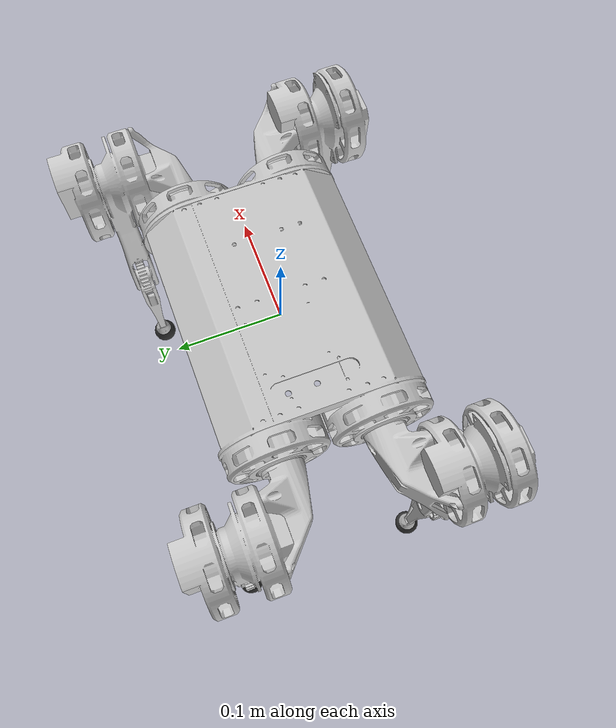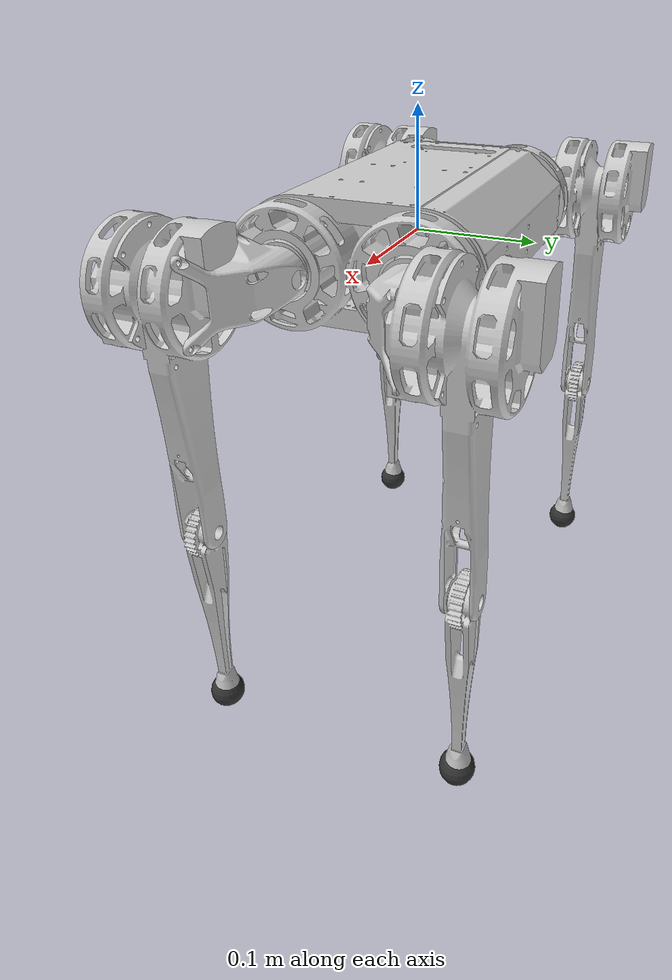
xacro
<?xml version="1.0" ?>
<robot name="mini_cheetah" xmlns:xacro="http://ros.org/wiki/xacro">
    <material name="darkgray">
        <color rgba=".2 .2 .2 1"/>
    </material>
    <link name="body">
        <inertial>
            <mass value="3.3"/>
            <origin xyz="0.0 0.0 0.0"/>
            <inertia ixx="0.011253" ixy="0" ixz="0" iyy="0.036203" iyz="0" izz="0.042673"/>
        </inertial>
        <visual>
            <geometry>
                <mesh filename="package://quadruped_ctrl/urdf/mini_cheetah/meshes/mini_body.dae"/>
            </geometry>
            <origin rpy="0.0 0.0 0.0" xyz="0.0 0.0 0.0"/>
        </visual>
        <collision>
            <geometry>
                <mesh filename="package://quadruped_ctrl/urdf/mini_cheetah/meshes/mini_body.dae"/>
            </geometry>
            <origin rpy="0 0 0" xyz="0 0 0"/>
        </collision>
    </link>

    <!--!!!!!!!!!!!! Front Right Leg !!!!!!!!!!!!!!!!!!!!!!!!!!!!!!!!!!!!-->
    <joint name="torso_to_abduct_fr_j" type="continuous">
        <axis xyz="1 0 0"/>
        <origin rpy="0 0 0" xyz="0.19 -0.049 0.0"/>
        <parent link="body"/>
        <child link="abduct_fr"/>
    </joint>
    <link name="abduct_fr">
        <inertial>
            <mass value="0.54"/>
            <origin xyz="0.0 0.036 0."/>
            <inertia ixx="0.000381" ixy="0.000058" ixz="0.00000045"
                iyy="0.000560" iyz="0.00000095" izz="0.000444"/>
        </inertial>
        <visual>
            <geometry>
                <mesh filename="package://quadruped_ctrl/urdf/mini_cheetah/meshes/mini_abad.dae"/>
            </geometry>
            <origin rpy="3.141592 0.0 1.5708" xyz="-0.055 0.0 0.0"/>
        </visual>
        <collision>
            <geometry>
                <mesh filename="package://quadruped_ctrl/urdf/mini_cheetah/meshes/mini_abad.dae"/>
            </geometry>
            <origin rpy="3.141592 0 1.5708" xyz="-0.055 0 0"/>
        </collision>
    </link>

    <joint name="abduct_fr_to_thigh_fr_j" type="continuous">
        <axis xyz="0 -1 0"/>
        <origin rpy="0.0 0.0 0.0" xyz="0.0 -0.062 0.00"/>
        <parent link="abduct_fr"/>
        <child link="thigh_fr"/>
    </joint>
    <link name="thigh_fr">
        <inertial>
            <mass value="0.634"/>
            <origin xyz="0.0 0.016 -0.02"/>
            <inertia ixx="0.001983" ixy="0.000245" ixz="0.000013"
                iyy="0.002103" iyz="0.0000015" izz="0.000408"/>
        </inertial>
        <visual>
            <geometry>
                <mesh filename="package://quadruped_ctrl/urdf/mini_cheetah/meshes/mini_upper_link.dae"/>
            </geometry>
            <origin rpy="0.0 -1.5708 0.0" xyz="0.0 0.0 0.0"/>
        </visual>
        <collision>
            <geometry>
                <mesh filename="package://quadruped_ctrl/urdf/mini_cheetah/meshes/mini_upper_link.dae"/>
            </geometry>
            <origin rpy="0 -1.5708 0" xyz="0 0 0"/>
        </collision>
    </link>

    <joint name="thigh_fr_to_knee_fr_j" type="continuous">
        <axis xyz="0 -1 0"/>
        <origin rpy="0.0 0 0.0" xyz="0.0 0.0 -0.209"/>
        <parent link="thigh_fr"/>
        <child link="shank_fr"/>
    </joint>
    <link name="shank_fr">
        <inertial>
            <mass value="0.064"/>
            <origin xyz="0.0 0.0 -0.209"/>
            <inertia ixx="0.000245" ixy="0" ixz="0.0" iyy="0.000248" iyz="0" izz="0.000006"/>
        </inertial>
        <visual>
            <geometry>
                <mesh filename="package://quadruped_ctrl/urdf/mini_cheetah/meshes/mini_lower_link.dae"/>
            </geometry>
            <origin rpy="0.0 3.141592 0.0" xyz="0.0 0.0 0.0"/>
        </visual>
        <collision>
            <geometry>
                <mesh filename="package://quadruped_ctrl/urdf/mini_cheetah/meshes/mini_lower_link.dae"/>
            </geometry>
            <origin rpy="0 3.141592 0" xyz="0 0 0"/>
        </collision>
    </link>
    <link name="toe_fr">
    <contact>
      <friction_anchor/>
      <stiffness value="30000.0"/>
      <damping value="1000.0"/>
      <spinning_friction value="0.3"/>
      <lateral_friction value="3.0"/>
    </contact>
    <visual>
      <origin rpy="0 0 0" xyz="0 0 0"/>
      <geometry>
        <sphere radius="0.015"/>
      </geometry>
      <material name="darkgray"/>
    </visual>
    <collision>
      <origin rpy="0 0 0" xyz="0 0 0"/>
      <geometry>
        <sphere radius="0.015"/>
      </geometry>
    </collision>
    <inertial>
      <mass value="0.15"/>
      <inertia ixx="0.000025" ixy="0" ixz="0" iyy="0.000025" iyz="0" izz="0.000025"/>
    </inertial>
  </link>
  <joint name="toe_fr_joint" type="fixed">
    <parent link="shank_fr"/>
    <child link="toe_fr"/>
    <origin xyz="0 0 -0.18"/>
    <dynamics damping="0.0" friction="0.0"/>
  </joint>

<!--!!!!!!!!!!!! Front Left Leg !!!!!!!!!!!!!!!!!!!!!!!!!!!!!!!!!!!!-->
    <joint name="torso_to_abduct_fl_j" type="continuous">
        <axis xyz="1 0 0"/>
        <origin rpy="0 0 0" xyz="0.19 0.049 0.0"/>
        <parent link="body"/>
        <child link="abduct_fl"/>
    </joint>
    <link name="abduct_fl">
        <inertial>
            <mass value="0.54"/>
            <origin xyz="0.0 0.036 0."/>
            <inertia ixx="0.000381" ixy="0.000058" ixz="0.00000045"
                iyy="0.000560" iyz="0.00000095" izz="0.000444"/>
        </inertial>
        <visual>
            <geometry>
                <mesh filename="package://quadruped_ctrl/urdf/mini_cheetah/meshes/mini_abad.dae"/>
            </geometry>
            <origin rpy="0. 0. -1.5708" xyz="-0.055 0.0 0.0"/>
        </visual>
        <collision>
            <geometry>
                <mesh filename="package://quadruped_ctrl/urdf/mini_cheetah/meshes/mini_abad.dae"/>
            </geometry>
            <origin rpy="0 0 -1.5708" xyz="-0.055 0 0"/>
        </collision>
    </link>

    <joint name="abduct_fl_to_thigh_fl_j" type="continuous">
        <axis xyz="0 -1 0"/>
        <origin rpy="0.0 0.0 0.0" xyz="0.0 0.062 0.00"/>
        <parent link="abduct_fl"/>
        <child link="thigh_fl"/>
    </joint>
    <link name="thigh_fl">
        <inertial>
            <mass value="0.634"/>
            <origin xyz="0.0 0.016 -0.02"/>
            <inertia ixx="0.001983" ixy="0.000245" ixz="0.000013"
                iyy="0.002103" iyz="0.0000015" izz="0.000408"/>
        </inertial>
        <visual>
            <geometry>
                <mesh filename="package://quadruped_ctrl/urdf/mini_cheetah/meshes/mini_upper_link.dae"/>
            </geometry>
            <origin rpy="0.0 -1.5708 0.0" xyz="0.0 0.0 0.0"/>
        </visual>
        <collision>
            <geometry>
                <mesh filename="package://quadruped_ctrl/urdf/mini_cheetah/meshes/mini_upper_link.dae"/>
            </geometry>
            <origin rpy="0 -1.5708 0" xyz="0 0 0"/>
        </collision>
    </link>

    <joint name="thigh_fl_to_knee_fl_j" type="continuous">
        <axis xyz="0 -1 0"/>
        <origin rpy="0.0 0 0.0" xyz="0.0 0.0 -0.209"/>
        <parent link="thigh_fl"/>
        <child link="shank_fl"/>
    </joint>
    <link name="shank_fl">
        <inertial>
            <mass value="0.064"/>
            <origin xyz="0.0 0.0 -0.209"/>
            <inertia ixx="0.000245" ixy="0" ixz="0.0" iyy="0.000248" iyz="0" izz="0.000006"/>
        </inertial>
        <visual>
            <geometry>
                <mesh filename="package://quadruped_ctrl/urdf/mini_cheetah/meshes/mini_lower_link.dae"/>
            </geometry>
            <origin rpy="0.0 3.141592 0.0" xyz="0.0 0.0 0.0"/>
        </visual>
        <collision>
            <geometry>
                <mesh filename="package://quadruped_ctrl/urdf/mini_cheetah/meshes/mini_lower_link.dae"/>
            </geometry>
            <origin rpy="0 3.141592 0" xyz="0 0 0"/>
        </collision>
    </link>
    <link name="toe_fl">
      <contact>
      <friction_anchor/>
      <stiffness value="30000.0"/>
      <damping value="1000.0"/>
      <spinning_friction value="0.3"/>
      <lateral_friction value="3.0"/>
    </contact>
    <visual>
      <origin rpy="0 0 0" xyz="0 0 0"/>
      <geometry>
        <sphere radius="0.015"/>
      </geometry>
      <material name="darkgray"/>
    </visual>
    <collision>
      <origin rpy="0 0 0" xyz="0 0 0"/>
      <geometry>
        <sphere radius="0.015"/>
      </geometry>
    </collision>
    <inertial>
      <mass value="0.15"/>
      <inertia ixx="0.000025" ixy="0" ixz="0" iyy="0.000025" iyz="0" izz="0.000025"/>
    </inertial>
  </link>
  <joint name="toe_fl_joint" type="fixed">
    <parent link="shank_fl"/>
    <child link="toe_fl"/>
    <origin xyz="0 0 -0.18"/>
    <dynamics damping="0.0" friction="0.0"/>
  </joint>

<!--!!!!!!!!!!!! Hind Right Leg !!!!!!!!!!!!!!!!!!!!!!!!!!!!!!!!!!!!-->
    <joint name="torso_to_abduct_hr_j" type="continuous">
        <axis xyz="1 0 0"/>
        <origin rpy="0 0 0" xyz="-0.19 -0.049 0.0"/>
        <parent link="body"/>
        <child link="abduct_hr"/>
    </joint>
    <link name="abduct_hr">
        <inertial>
            <mass value="0.54"/>
            <origin xyz="0.0 0.036 0."/>
            <inertia ixx="0.000381" ixy="0.000058" ixz="0.00000045"
                iyy="0.000560" iyz="0.00000095" izz="0.000444"/>
        </inertial>
        <visual>
            <geometry>
                <mesh filename="package://quadruped_ctrl/urdf/mini_cheetah/meshes/mini_abad.dae"/>
            </geometry>
            <origin rpy="0.0 0.0 1.5708" xyz="0.055 0.0 0.0"/>
        </visual>
        <collision>
            <geometry>
                <mesh filename="package://quadruped_ctrl/urdf/mini_cheetah/meshes/mini_abad.dae"/>
            </geometry>
            <origin rpy="0 0 1.5708" xyz="0.055 0 0"/>
        </collision>
    </link>

    <joint name="abduct_hr_to_thigh_hr_j" type="continuous">
        <axis xyz="0 -1 0"/>
        <origin rpy="0.0 0.0 0.0" xyz="0.0 -0.062 0.00"/>
        <parent link="abduct_hr"/>
        <child link="thigh_hr"/>
    </joint>
    <link name="thigh_hr">
        <inertial>
            <mass value="0.634"/>
            <origin xyz="0.0 0.016 -0.02"/>
            <inertia ixx="0.001983" ixy="0.000245" ixz="0.000013"
                iyy="0.002103" iyz="0.0000015" izz="0.000408"/>
        </inertial>
        <visual>
            <geometry>
                <mesh filename="package://quadruped_ctrl/urdf/mini_cheetah/meshes/mini_upper_link.dae"/>
            </geometry>
            <origin rpy="0.0 -1.5708 0.0" xyz="0.0 0.0 0.0"/>
        </visual>
        <collision>
            <geometry>
                <mesh filename="package://quadruped_ctrl/urdf/mini_cheetah/meshes/mini_upper_link.dae"/>
            </geometry>
            <origin rpy="0 -1.5708 0" xyz="0 0 0"/>
        </collision>
    </link>

    <joint name="thigh_hr_to_knee_hr_j" type="continuous">
        <axis xyz="0 -1 0"/>
        <origin rpy="0.0 0 0.0" xyz="0.0 0.0 -0.209"/>
        <parent link="thigh_hr"/>
        <child link="shank_hr"/>
    </joint>
    <link name="shank_hr">
        <inertial>
            <mass value="0.064"/>
            <origin xyz="0.0 0.0 -0.209"/>
            <inertia ixx="0.000245" ixy="0" ixz="0.0" iyy="0.000248" iyz="0" izz="0.000006"/>
        </inertial>
        <visual>
            <geometry>
                <mesh filename="package://quadruped_ctrl/urdf/mini_cheetah/meshes/mini_lower_link.dae"/>
            </geometry>
            <origin rpy="0.0 3.141592 0.0" xyz="0.0 0.0 0.0"/>
        </visual>
        <collision>
            <geometry>
                <mesh filename="package://quadruped_ctrl/urdf/mini_cheetah/meshes/mini_lower_link.dae"/>
            </geometry>
            <origin rpy="0 3.141592 0" xyz="0 0 0"/>
        </collision>
    </link>
     <link name="toe_hr">
      <contact>
      <friction_anchor/>
      <stiffness value="30000.0"/>
      <damping value="1000.0"/>
      <spinning_friction value="0.3"/>
      <lateral_friction value="3.0"/>
    </contact>
    <visual>
      <origin rpy="0 0 0" xyz="0 0 0"/>
      <geometry>
        <sphere radius="0.015"/>
      </geometry>
      <material name="darkgray"/>
    </visual>
    <collision>
      <origin rpy="0 0 0" xyz="0 0 0"/>
      <geometry>
        <sphere radius="0.015"/>
      </geometry>
    </collision>
    <inertial>
      <mass value="0.15"/>
      <inertia ixx="0.000025" ixy="0" ixz="0" iyy="0.000025" iyz="0" izz="0.000025"/>
    </inertial>
  </link>
  <joint name="toe_hr_joint" type="fixed">
    <parent link="shank_hr"/>
    <child link="toe_hr"/>
    <origin xyz="0 0 -0.18"/>
    <dynamics damping="0.0" friction="0.0"/>
  </joint>

<!--!!!!!!!!!!!! Hind Left Leg !!!!!!!!!!!!!!!!!!!!!!!!!!!!!!!!!!!!-->
    <joint name="torso_to_abduct_hl_j" type="continuous">
        <axis xyz="1 0 0"/>
        <origin rpy="0 0 0" xyz="-0.19 0.049 0.0"/>
        <parent link="body"/>
        <child link="abduct_hl"/>
    </joint>
    <link name="abduct_hl">
        <inertial>
            <mass value="0.54"/>
            <origin xyz="0.0 0.036 0."/>
            <inertia ixx="0.000381" ixy="0.000058" ixz="0.00000045"
                iyy="0.000560" iyz="0.00000095" izz="0.000444"/>
        </inertial>
        <visual>
            <geometry>
                <mesh filename="package://quadruped_ctrl/urdf/mini_cheetah/meshes/mini_abad.dae"/>
            </geometry>
            <origin rpy="3.141592 0.0 -1.5708" xyz="0.055 0.0 0.0"/>
        </visual>
        <collision>
            <geometry>
                <mesh filename="package://quadruped_ctrl/urdf/mini_cheetah/meshes/mini_abad.dae"/>
            </geometry>
            <origin rpy="3.141592 0 -1.5708" xyz="0.055 0 0"/>
        </collision>
    </link>

    <joint name="abduct_hl_to_thigh_hl_j" type="continuous">
        <axis xyz="0 -1 0"/>
        <origin rpy="0.0 0.0 0.0" xyz="0.0 0.062 0.00"/>
        <parent link="abduct_hl"/>
        <child link="thigh_hl"/>
    </joint>
    <link name="thigh_hl">
        <inertial>
            <mass value="0.634"/>
            <origin xyz="0.0 0.016 -0.02"/>
            <inertia ixx="0.001983" ixy="0.000245" ixz="0.000013"
                iyy="0.002103" iyz="0.0000015" izz="0.000408"/>
        </inertial>
        <visual>
            <geometry>
                <mesh filename="package://quadruped_ctrl/urdf/mini_cheetah/meshes/mini_upper_link.dae"/>
            </geometry>
            <origin rpy="0.0 -1.5708 0.0" xyz="0.0 0.0 0.0"/>
        </visual>
        <collision>
            <geometry>
                <mesh filename="package://quadruped_ctrl/urdf/mini_cheetah/meshes/mini_upper_link.dae"/>
            </geometry>
            <origin rpy="0 -1.5708 0" xyz="0 0 0"/>
        </collision>
    </link>

    <joint name="thigh_hl_to_knee_hl_j" type="continuous">
        <axis xyz="0 -1 0"/>
        <origin rpy="0.0 0 0.0" xyz="0.0 0.0 -0.209"/>
        <parent link="thigh_hl"/>
        <child link="shank_hl"/>
    </joint>
    <link name="shank_hl">
        <inertial>
            <mass value="0.064"/>
            <origin xyz="0.0 0.0 -0.209"/>
            <inertia ixx="0.000245" ixy="0" ixz="0.0" iyy="0.000248" iyz="0" izz="0.000006"/>
        </inertial>
        <visual>
            <geometry>
                <mesh filename="package://quadruped_ctrl/urdf/mini_cheetah/meshes/mini_lower_link.dae"/>
            </geometry>
            <origin rpy="0.0 3.141592 0.0" xyz="0.0 0.0 0.0"/>
        </visual>
        <collision>
            <geometry>
                <mesh filename="package://quadruped_ctrl/urdf/mini_cheetah/meshes/mini_lower_link.dae"/>
            </geometry>
            <origin rpy="0 3.141592 0" xyz="0 0 0"/>
        </collision>
    </link>
    <link name="toe_hl">
      <contact>
      <friction_anchor/>
      <stiffness value="30000.0"/>
      <damping value="1000.0"/>
      <spinning_friction value="0.3"/>
      <lateral_friction value="3.0"/>
    </contact>
    <visual>
      <origin rpy="0 0 0" xyz="0 0 0"/>
      <geometry>
        <sphere radius="0.015"/>
      </geometry>
      <material name="darkgray"/>
    </visual>
    <collision>
      <origin rpy="0 0 0" xyz="0 0 0"/>
      <geometry>
        <sphere radius="0.015"/>
      </geometry>
    </collision>
    <inertial>
      <mass value="0.15"/>
      <inertia ixx="0.000025" ixy="0" ixz="0" iyy="0.000025" iyz="0" izz="0.000025"/>
    </inertial>
  </link>
  <joint name="toe_hl_joint" type="fixed">
    <parent link="shank_hl"/>
    <child link="toe_hl"/>
    <origin xyz="0 0 -0.18"/>
    <dynamics damping="0.0" friction="0.0"/>
  </joint>

</robot>
